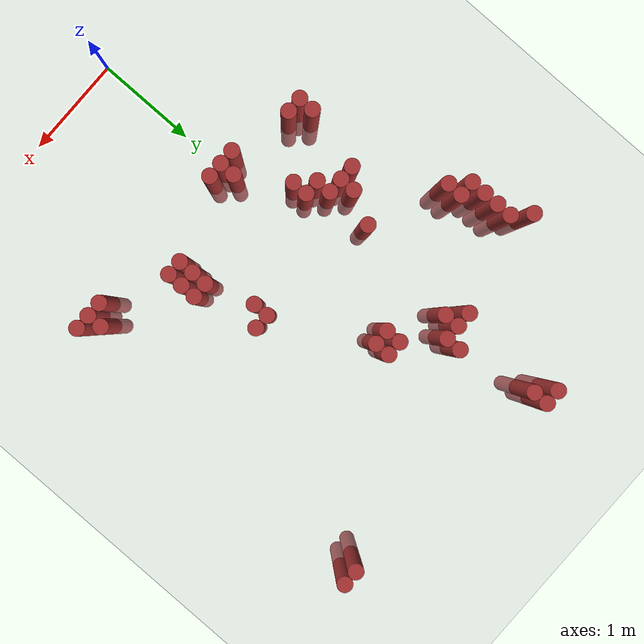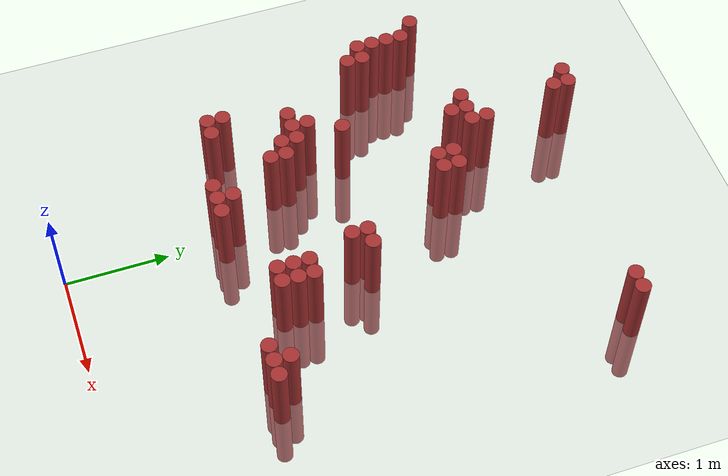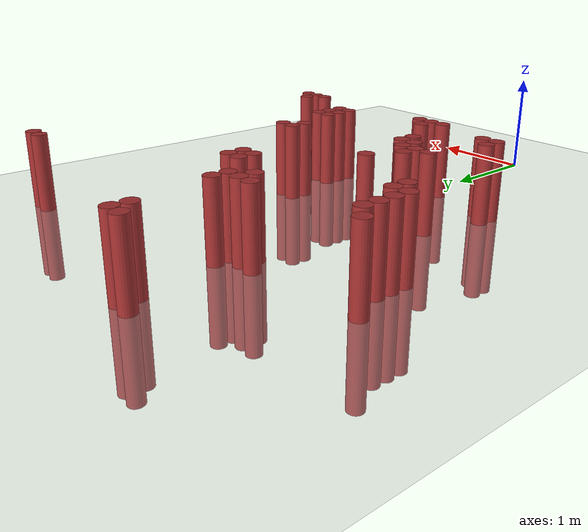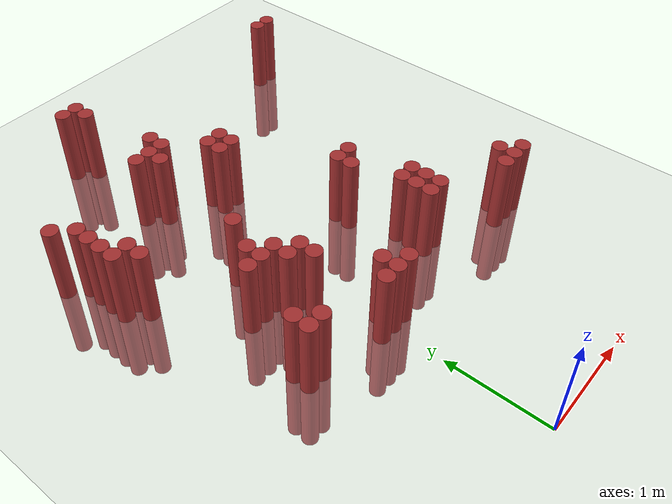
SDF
<sdf version="1.6">
 <world name="default">
  <model name="ground_plane">
   <static>1</static>
   <link name="link">
    <collision name="collision">
     <geometry><plane><normal>0 0 1</normal><size>100 100</size></plane></geometry>
     <surface><friction><ode><mu>100</mu><mu2>50</mu2></ode></friction></surface>
    </collision>
    <visual name="visual">
     <cast_shadows>0</cast_shadows>
     <geometry><plane><normal>0 0 1</normal><size>100 100</size></plane></geometry>
     <material>
      <script><uri>file://media/materials/scripts/gazebo.material</uri><name>Gazebo/Grey</name></script>
     </material>
    </visual>
   </link>
  </model>
  <model name="unit_cylinder_320">
   <static>1</static>
   <pose>-1.475000 3.925000 0.000000 0.000000 0.000000 0.000000</pose>
   <link name="link">
    <inertial>
     <mass>1</mass>
     <inertia><ixx>0.145833</ixx><ixy>0</ixy><ixz>0</ixz><iyy>0.145833</iyy><iyz>0</iyz><izz>0.125</izz></inertia>
    </inertial>
    <collision name="collision">
     <geometry><cylinder><radius>0.075000</radius><length>1.5</length></cylinder></geometry>
    </collision>
    <visual name="visual">
     <geometry><cylinder><radius>0.075000</radius><length>1.5</length></cylinder></geometry>
     <material>
      <ambient>0.648000 0.192000 0.192000 1</ambient>
      <diffuse>0.648000 0.192000 0.192000 1</diffuse>
     </material>
     <material>
      <script><name>Gazebo/Grey</name><uri>file://media/materials/scripts/gazebo.material</uri></script>
     </material>
    </visual>
   </link>
  </model>
  <model name="unit_cylinder_321">
   <static>1</static>
   <pose>-1.325000 3.325000 0.000000 0.000000 0.000000 0.000000</pose>
   <link name="link">
    <inertial>
     <mass>1</mass>
     <inertia><ixx>0.145833</ixx><ixy>0</ixy><ixz>0</ixz><iyy>0.145833</iyy><iyz>0</iyz><izz>0.125</izz></inertia>
    </inertial>
    <collision name="collision">
     <geometry><cylinder><radius>0.075000</radius><length>1.5</length></cylinder></geometry>
    </collision>
    <visual name="visual">
     <geometry><cylinder><radius>0.075000</radius><length>1.5</length></cylinder></geometry>
     <material>
      <ambient>0.648000 0.192000 0.192000 1</ambient>
      <diffuse>0.648000 0.192000 0.192000 1</diffuse>
     </material>
     <material>
      <script><name>Gazebo/Grey</name><uri>file://media/materials/scripts/gazebo.material</uri></script>
     </material>
    </visual>
   </link>
  </model>
  <model name="unit_cylinder_322">
   <static>1</static>
   <pose>-1.325000 3.475000 0.000000 0.000000 0.000000 0.000000</pose>
   <link name="link">
    <inertial>
     <mass>1</mass>
     <inertia><ixx>0.145833</ixx><ixy>0</ixy><ixz>0</ixz><iyy>0.145833</iyy><iyz>0</iyz><izz>0.125</izz></inertia>
    </inertial>
    <collision name="collision">
     <geometry><cylinder><radius>0.075000</radius><length>1.5</length></cylinder></geometry>
    </collision>
    <visual name="visual">
     <geometry><cylinder><radius>0.075000</radius><length>1.5</length></cylinder></geometry>
     <material>
      <ambient>0.648000 0.192000 0.192000 1</ambient>
      <diffuse>0.648000 0.192000 0.192000 1</diffuse>
     </material>
     <material>
      <script><name>Gazebo/Grey</name><uri>file://media/materials/scripts/gazebo.material</uri></script>
     </material>
    </visual>
   </link>
  </model>
  <model name="unit_cylinder_323">
   <static>1</static>
   <pose>-1.325000 3.625000 0.000000 0.000000 0.000000 0.000000</pose>
   <link name="link">
    <inertial>
     <mass>1</mass>
     <inertia><ixx>0.145833</ixx><ixy>0</ixy><ixz>0</ixz><iyy>0.145833</iyy><iyz>0</iyz><izz>0.125</izz></inertia>
    </inertial>
    <collision name="collision">
     <geometry><cylinder><radius>0.075000</radius><length>1.5</length></cylinder></geometry>
    </collision>
    <visual name="visual">
     <geometry><cylinder><radius>0.075000</radius><length>1.5</length></cylinder></geometry>
     <material>
      <ambient>0.648000 0.192000 0.192000 1</ambient>
      <diffuse>0.648000 0.192000 0.192000 1</diffuse>
     </material>
     <material>
      <script><name>Gazebo/Grey</name><uri>file://media/materials/scripts/gazebo.material</uri></script>
     </material>
    </visual>
   </link>
  </model>
  <model name="unit_cylinder_324">
   <static>1</static>
   <pose>-1.325000 3.775000 0.000000 0.000000 0.000000 0.000000</pose>
   <link name="link">
    <inertial>
     <mass>1</mass>
     <inertia><ixx>0.145833</ixx><ixy>0</ixy><ixz>0</ixz><iyy>0.145833</iyy><iyz>0</iyz><izz>0.125</izz></inertia>
    </inertial>
    <collision name="collision">
     <geometry><cylinder><radius>0.075000</radius><length>1.5</length></cylinder></geometry>
    </collision>
    <visual name="visual">
     <geometry><cylinder><radius>0.075000</radius><length>1.5</length></cylinder></geometry>
     <material>
      <ambient>0.648000 0.192000 0.192000 1</ambient>
      <diffuse>0.648000 0.192000 0.192000 1</diffuse>
     </material>
     <material>
      <script><name>Gazebo/Grey</name><uri>file://media/materials/scripts/gazebo.material</uri></script>
     </material>
    </visual>
   </link>
  </model>
  <model name="unit_cylinder_325">
   <static>1</static>
   <pose>-1.175000 3.175000 0.000000 0.000000 0.000000 0.000000</pose>
   <link name="link">
    <inertial>
     <mass>1</mass>
     <inertia><ixx>0.145833</ixx><ixy>0</ixy><ixz>0</ixz><iyy>0.145833</iyy><iyz>0</iyz><izz>0.125</izz></inertia>
    </inertial>
    <collision name="collision">
     <geometry><cylinder><radius>0.075000</radius><length>1.5</length></cylinder></geometry>
    </collision>
    <visual name="visual">
     <geometry><cylinder><radius>0.075000</radius><length>1.5</length></cylinder></geometry>
     <material>
      <ambient>0.648000 0.192000 0.192000 1</ambient>
      <diffuse>0.648000 0.192000 0.192000 1</diffuse>
     </material>
     <material>
      <script><name>Gazebo/Grey</name><uri>file://media/materials/scripts/gazebo.material</uri></script>
     </material>
    </visual>
   </link>
  </model>
  <model name="unit_cylinder_326">
   <static>1</static>
   <pose>-1.175000 3.325000 0.000000 0.000000 0.000000 0.000000</pose>
   <link name="link">
    <inertial>
     <mass>1</mass>
     <inertia><ixx>0.145833</ixx><ixy>0</ixy><ixz>0</ixz><iyy>0.145833</iyy><iyz>0</iyz><izz>0.125</izz></inertia>
    </inertial>
    <collision name="collision">
     <geometry><cylinder><radius>0.075000</radius><length>1.5</length></cylinder></geometry>
    </collision>
    <visual name="visual">
     <geometry><cylinder><radius>0.075000</radius><length>1.5</length></cylinder></geometry>
     <material>
      <ambient>0.648000 0.192000 0.192000 1</ambient>
      <diffuse>0.648000 0.192000 0.192000 1</diffuse>
     </material>
     <material>
      <script><name>Gazebo/Grey</name><uri>file://media/materials/scripts/gazebo.material</uri></script>
     </material>
    </visual>
   </link>
  </model>
  <model name="unit_cylinder_329">
   <static>1</static>
   <pose>-0.875000 1.675000 0.000000 0.000000 0.000000 0.000000</pose>
   <link name="link">
    <inertial>
     <mass>1</mass>
     <inertia><ixx>0.145833</ixx><ixy>0</ixy><ixz>0</ixz><iyy>0.145833</iyy><iyz>0</iyz><izz>0.125</izz></inertia>
    </inertial>
    <collision name="collision">
     <geometry><cylinder><radius>0.075000</radius><length>1.5</length></cylinder></geometry>
    </collision>
    <visual name="visual">
     <geometry><cylinder><radius>0.075000</radius><length>1.5</length></cylinder></geometry>
     <material>
      <ambient>0.648000 0.192000 0.192000 1</ambient>
      <diffuse>0.648000 0.192000 0.192000 1</diffuse>
     </material>
     <material>
      <script><name>Gazebo/Grey</name><uri>file://media/materials/scripts/gazebo.material</uri></script>
     </material>
    </visual>
   </link>
  </model>
  <model name="unit_cylinder_330">
   <static>1</static>
   <pose>-0.875000 1.825000 0.000000 0.000000 0.000000 0.000000</pose>
   <link name="link">
    <inertial>
     <mass>1</mass>
     <inertia><ixx>0.145833</ixx><ixy>0</ixy><ixz>0</ixz><iyy>0.145833</iyy><iyz>0</iyz><izz>0.125</izz></inertia>
    </inertial>
    <collision name="collision">
     <geometry><cylinder><radius>0.075000</radius><length>1.5</length></cylinder></geometry>
    </collision>
    <visual name="visual">
     <geometry><cylinder><radius>0.075000</radius><length>1.5</length></cylinder></geometry>
     <material>
      <ambient>0.648000 0.192000 0.192000 1</ambient>
      <diffuse>0.648000 0.192000 0.192000 1</diffuse>
     </material>
     <material>
      <script><name>Gazebo/Grey</name><uri>file://media/materials/scripts/gazebo.material</uri></script>
     </material>
    </visual>
   </link>
  </model>
  <model name="unit_cylinder_332">
   <static>1</static>
   <pose>-0.725000 1.675000 0.000000 0.000000 0.000000 0.000000</pose>
   <link name="link">
    <inertial>
     <mass>1</mass>
     <inertia><ixx>0.145833</ixx><ixy>0</ixy><ixz>0</ixz><iyy>0.145833</iyy><iyz>0</iyz><izz>0.125</izz></inertia>
    </inertial>
    <collision name="collision">
     <geometry><cylinder><radius>0.075000</radius><length>1.5</length></cylinder></geometry>
    </collision>
    <visual name="visual">
     <geometry><cylinder><radius>0.075000</radius><length>1.5</length></cylinder></geometry>
     <material>
      <ambient>0.648000 0.192000 0.192000 1</ambient>
      <diffuse>0.648000 0.192000 0.192000 1</diffuse>
     </material>
     <material>
      <script><name>Gazebo/Grey</name><uri>file://media/materials/scripts/gazebo.material</uri></script>
     </material>
    </visual>
   </link>
  </model>
  <model name="unit_cylinder_333">
   <static>1</static>
   <pose>-0.725000 2.425000 0.000000 0.000000 0.000000 0.000000</pose>
   <link name="link">
    <inertial>
     <mass>1</mass>
     <inertia><ixx>0.145833</ixx><ixy>0</ixy><ixz>0</ixz><iyy>0.145833</iyy><iyz>0</iyz><izz>0.125</izz></inertia>
    </inertial>
    <collision name="collision">
     <geometry><cylinder><radius>0.075000</radius><length>1.5</length></cylinder></geometry>
    </collision>
    <visual name="visual">
     <geometry><cylinder><radius>0.075000</radius><length>1.5</length></cylinder></geometry>
     <material>
      <ambient>0.648000 0.192000 0.192000 1</ambient>
      <diffuse>0.648000 0.192000 0.192000 1</diffuse>
     </material>
     <material>
      <script><name>Gazebo/Grey</name><uri>file://media/materials/scripts/gazebo.material</uri></script>
     </material>
    </visual>
   </link>
  </model>
  <model name="unit_cylinder_336">
   <static>1</static>
   <pose>-0.575000 2.425000 0.000000 0.000000 0.000000 0.000000</pose>
   <link name="link">
    <inertial>
     <mass>1</mass>
     <inertia><ixx>0.145833</ixx><ixy>0</ixy><ixz>0</ixz><iyy>0.145833</iyy><iyz>0</iyz><izz>0.125</izz></inertia>
    </inertial>
    <collision name="collision">
     <geometry><cylinder><radius>0.075000</radius><length>1.5</length></cylinder></geometry>
    </collision>
    <visual name="visual">
     <geometry><cylinder><radius>0.075000</radius><length>1.5</length></cylinder></geometry>
     <material>
      <ambient>0.648000 0.192000 0.192000 1</ambient>
      <diffuse>0.648000 0.192000 0.192000 1</diffuse>
     </material>
     <material>
      <script><name>Gazebo/Grey</name><uri>file://media/materials/scripts/gazebo.material</uri></script>
     </material>
    </visual>
   </link>
  </model>
  <model name="unit_cylinder_337">
   <static>1</static>
   <pose>-0.575000 2.575000 0.000000 0.000000 0.000000 0.000000</pose>
   <link name="link">
    <inertial>
     <mass>1</mass>
     <inertia><ixx>0.145833</ixx><ixy>0</ixy><ixz>0</ixz><iyy>0.145833</iyy><iyz>0</iyz><izz>0.125</izz></inertia>
    </inertial>
    <collision name="collision">
     <geometry><cylinder><radius>0.075000</radius><length>1.5</length></cylinder></geometry>
    </collision>
    <visual name="visual">
     <geometry><cylinder><radius>0.075000</radius><length>1.5</length></cylinder></geometry>
     <material>
      <ambient>0.648000 0.192000 0.192000 1</ambient>
      <diffuse>0.648000 0.192000 0.192000 1</diffuse>
     </material>
     <material>
      <script><name>Gazebo/Grey</name><uri>file://media/materials/scripts/gazebo.material</uri></script>
     </material>
    </visual>
   </link>
  </model>
  <model name="unit_cylinder_339">
   <static>1</static>
   <pose>-0.425000 2.275000 0.000000 0.000000 0.000000 0.000000</pose>
   <link name="link">
    <inertial>
     <mass>1</mass>
     <inertia><ixx>0.145833</ixx><ixy>0</ixy><ixz>0</ixz><iyy>0.145833</iyy><iyz>0</iyz><izz>0.125</izz></inertia>
    </inertial>
    <collision name="collision">
     <geometry><cylinder><radius>0.075000</radius><length>1.5</length></cylinder></geometry>
    </collision>
    <visual name="visual">
     <geometry><cylinder><radius>0.075000</radius><length>1.5</length></cylinder></geometry>
     <material>
      <ambient>0.648000 0.192000 0.192000 1</ambient>
      <diffuse>0.648000 0.192000 0.192000 1</diffuse>
     </material>
     <material>
      <script><name>Gazebo/Grey</name><uri>file://media/materials/scripts/gazebo.material</uri></script>
     </material>
    </visual>
   </link>
  </model>
  <model name="unit_cylinder_340">
   <static>1</static>
   <pose>-0.425000 2.425000 0.000000 0.000000 0.000000 0.000000</pose>
   <link name="link">
    <inertial>
     <mass>1</mass>
     <inertia><ixx>0.145833</ixx><ixy>0</ixy><ixz>0</ixz><iyy>0.145833</iyy><iyz>0</iyz><izz>0.125</izz></inertia>
    </inertial>
    <collision name="collision">
     <geometry><cylinder><radius>0.075000</radius><length>1.5</length></cylinder></geometry>
    </collision>
    <visual name="visual">
     <geometry><cylinder><radius>0.075000</radius><length>1.5</length></cylinder></geometry>
     <material>
      <ambient>0.648000 0.192000 0.192000 1</ambient>
      <diffuse>0.648000 0.192000 0.192000 1</diffuse>
     </material>
     <material>
      <script><name>Gazebo/Grey</name><uri>file://media/materials/scripts/gazebo.material</uri></script>
     </material>
    </visual>
   </link>
  </model>
  <model name="unit_cylinder_341">
   <static>1</static>
   <pose>-0.425000 2.875000 0.000000 0.000000 0.000000 0.000000</pose>
   <link name="link">
    <inertial>
     <mass>1</mass>
     <inertia><ixx>0.145833</ixx><ixy>0</ixy><ixz>0</ixz><iyy>0.145833</iyy><iyz>0</iyz><izz>0.125</izz></inertia>
    </inertial>
    <collision name="collision">
     <geometry><cylinder><radius>0.075000</radius><length>1.5</length></cylinder></geometry>
    </collision>
    <visual name="visual">
     <geometry><cylinder><radius>0.075000</radius><length>1.5</length></cylinder></geometry>
     <material>
      <ambient>0.648000 0.192000 0.192000 1</ambient>
      <diffuse>0.648000 0.192000 0.192000 1</diffuse>
     </material>
     <material>
      <script><name>Gazebo/Grey</name><uri>file://media/materials/scripts/gazebo.material</uri></script>
     </material>
    </visual>
   </link>
  </model>
  <model name="unit_cylinder_342">
   <static>1</static>
   <pose>-0.425000 4.075000 0.000000 0.000000 0.000000 0.000000</pose>
   <link name="link">
    <inertial>
     <mass>1</mass>
     <inertia><ixx>0.145833</ixx><ixy>0</ixy><ixz>0</ixz><iyy>0.145833</iyy><iyz>0</iyz><izz>0.125</izz></inertia>
    </inertial>
    <collision name="collision">
     <geometry><cylinder><radius>0.075000</radius><length>1.5</length></cylinder></geometry>
    </collision>
    <visual name="visual">
     <geometry><cylinder><radius>0.075000</radius><length>1.5</length></cylinder></geometry>
     <material>
      <ambient>0.648000 0.192000 0.192000 1</ambient>
      <diffuse>0.648000 0.192000 0.192000 1</diffuse>
     </material>
     <material>
      <script><name>Gazebo/Grey</name><uri>file://media/materials/scripts/gazebo.material</uri></script>
     </material>
    </visual>
   </link>
  </model>
  <model name="unit_cylinder_343">
   <static>1</static>
   <pose>-0.425000 5.125000 0.000000 0.000000 0.000000 0.000000</pose>
   <link name="link">
    <inertial>
     <mass>1</mass>
     <inertia><ixx>0.145833</ixx><ixy>0</ixy><ixz>0</ixz><iyy>0.145833</iyy><iyz>0</iyz><izz>0.125</izz></inertia>
    </inertial>
    <collision name="collision">
     <geometry><cylinder><radius>0.075000</radius><length>1.5</length></cylinder></geometry>
    </collision>
    <visual name="visual">
     <geometry><cylinder><radius>0.075000</radius><length>1.5</length></cylinder></geometry>
     <material>
      <ambient>0.648000 0.192000 0.192000 1</ambient>
      <diffuse>0.648000 0.192000 0.192000 1</diffuse>
     </material>
     <material>
      <script><name>Gazebo/Grey</name><uri>file://media/materials/scripts/gazebo.material</uri></script>
     </material>
    </visual>
   </link>
  </model>
  <model name="unit_cylinder_344">
   <static>1</static>
   <pose>-0.275000 2.125000 0.000000 0.000000 0.000000 0.000000</pose>
   <link name="link">
    <inertial>
     <mass>1</mass>
     <inertia><ixx>0.145833</ixx><ixy>0</ixy><ixz>0</ixz><iyy>0.145833</iyy><iyz>0</iyz><izz>0.125</izz></inertia>
    </inertial>
    <collision name="collision">
     <geometry><cylinder><radius>0.075000</radius><length>1.5</length></cylinder></geometry>
    </collision>
    <visual name="visual">
     <geometry><cylinder><radius>0.075000</radius><length>1.5</length></cylinder></geometry>
     <material>
      <ambient>0.648000 0.192000 0.192000 1</ambient>
      <diffuse>0.648000 0.192000 0.192000 1</diffuse>
     </material>
     <material>
      <script><name>Gazebo/Grey</name><uri>file://media/materials/scripts/gazebo.material</uri></script>
     </material>
    </visual>
   </link>
  </model>
  <model name="unit_cylinder_345">
   <static>1</static>
   <pose>-0.275000 2.275000 0.000000 0.000000 0.000000 0.000000</pose>
   <link name="link">
    <inertial>
     <mass>1</mass>
     <inertia><ixx>0.145833</ixx><ixy>0</ixy><ixz>0</ixz><iyy>0.145833</iyy><iyz>0</iyz><izz>0.125</izz></inertia>
    </inertial>
    <collision name="collision">
     <geometry><cylinder><radius>0.075000</radius><length>1.5</length></cylinder></geometry>
    </collision>
    <visual name="visual">
     <geometry><cylinder><radius>0.075000</radius><length>1.5</length></cylinder></geometry>
     <material>
      <ambient>0.648000 0.192000 0.192000 1</ambient>
      <diffuse>0.648000 0.192000 0.192000 1</diffuse>
     </material>
     <material>
      <script><name>Gazebo/Grey</name><uri>file://media/materials/scripts/gazebo.material</uri></script>
     </material>
    </visual>
   </link>
  </model>
  <model name="unit_cylinder_346">
   <static>1</static>
   <pose>-0.275000 3.925000 0.000000 0.000000 0.000000 0.000000</pose>
   <link name="link">
    <inertial>
     <mass>1</mass>
     <inertia><ixx>0.145833</ixx><ixy>0</ixy><ixz>0</ixz><iyy>0.145833</iyy><iyz>0</iyz><izz>0.125</izz></inertia>
    </inertial>
    <collision name="collision">
     <geometry><cylinder><radius>0.075000</radius><length>1.5</length></cylinder></geometry>
    </collision>
    <visual name="visual">
     <geometry><cylinder><radius>0.075000</radius><length>1.5</length></cylinder></geometry>
     <material>
      <ambient>0.648000 0.192000 0.192000 1</ambient>
      <diffuse>0.648000 0.192000 0.192000 1</diffuse>
     </material>
     <material>
      <script><name>Gazebo/Grey</name><uri>file://media/materials/scripts/gazebo.material</uri></script>
     </material>
    </visual>
   </link>
  </model>
  <model name="unit_cylinder_347">
   <static>1</static>
   <pose>-0.275000 4.075000 0.000000 0.000000 0.000000 0.000000</pose>
   <link name="link">
    <inertial>
     <mass>1</mass>
     <inertia><ixx>0.145833</ixx><ixy>0</ixy><ixz>0</ixz><iyy>0.145833</iyy><iyz>0</iyz><izz>0.125</izz></inertia>
    </inertial>
    <collision name="collision">
     <geometry><cylinder><radius>0.075000</radius><length>1.5</length></cylinder></geometry>
    </collision>
    <visual name="visual">
     <geometry><cylinder><radius>0.075000</radius><length>1.5</length></cylinder></geometry>
     <material>
      <ambient>0.648000 0.192000 0.192000 1</ambient>
      <diffuse>0.648000 0.192000 0.192000 1</diffuse>
     </material>
     <material>
      <script><name>Gazebo/Grey</name><uri>file://media/materials/scripts/gazebo.material</uri></script>
     </material>
    </visual>
   </link>
  </model>
  <model name="unit_cylinder_348">
   <static>1</static>
   <pose>-0.275000 4.975000 0.000000 0.000000 0.000000 0.000000</pose>
   <link name="link">
    <inertial>
     <mass>1</mass>
     <inertia><ixx>0.145833</ixx><ixy>0</ixy><ixz>0</ixz><iyy>0.145833</iyy><iyz>0</iyz><izz>0.125</izz></inertia>
    </inertial>
    <collision name="collision">
     <geometry><cylinder><radius>0.075000</radius><length>1.5</length></cylinder></geometry>
    </collision>
    <visual name="visual">
     <geometry><cylinder><radius>0.075000</radius><length>1.5</length></cylinder></geometry>
     <material>
      <ambient>0.648000 0.192000 0.192000 1</ambient>
      <diffuse>0.648000 0.192000 0.192000 1</diffuse>
     </material>
     <material>
      <script><name>Gazebo/Grey</name><uri>file://media/materials/scripts/gazebo.material</uri></script>
     </material>
    </visual>
   </link>
  </model>
  <model name="unit_cylinder_349">
   <static>1</static>
   <pose>-0.275000 5.125000 0.000000 0.000000 0.000000 0.000000</pose>
   <link name="link">
    <inertial>
     <mass>1</mass>
     <inertia><ixx>0.145833</ixx><ixy>0</ixy><ixz>0</ixz><iyy>0.145833</iyy><iyz>0</iyz><izz>0.125</izz></inertia>
    </inertial>
    <collision name="collision">
     <geometry><cylinder><radius>0.075000</radius><length>1.5</length></cylinder></geometry>
    </collision>
    <visual name="visual">
     <geometry><cylinder><radius>0.075000</radius><length>1.5</length></cylinder></geometry>
     <material>
      <ambient>0.648000 0.192000 0.192000 1</ambient>
      <diffuse>0.648000 0.192000 0.192000 1</diffuse>
     </material>
     <material>
      <script><name>Gazebo/Grey</name><uri>file://media/materials/scripts/gazebo.material</uri></script>
     </material>
    </visual>
   </link>
  </model>
  <model name="unit_cylinder_350">
   <static>1</static>
   <pose>-0.125000 1.525000 0.000000 0.000000 0.000000 0.000000</pose>
   <link name="link">
    <inertial>
     <mass>1</mass>
     <inertia><ixx>0.145833</ixx><ixy>0</ixy><ixz>0</ixz><iyy>0.145833</iyy><iyz>0</iyz><izz>0.125</izz></inertia>
    </inertial>
    <collision name="collision">
     <geometry><cylinder><radius>0.075000</radius><length>1.5</length></cylinder></geometry>
    </collision>
    <visual name="visual">
     <geometry><cylinder><radius>0.075000</radius><length>1.5</length></cylinder></geometry>
     <material>
      <ambient>0.648000 0.192000 0.192000 1</ambient>
      <diffuse>0.648000 0.192000 0.192000 1</diffuse>
     </material>
     <material>
      <script><name>Gazebo/Grey</name><uri>file://media/materials/scripts/gazebo.material</uri></script>
     </material>
    </visual>
   </link>
  </model>
  <model name="unit_cylinder_351">
   <static>1</static>
   <pose>-0.125000 4.075000 0.000000 0.000000 0.000000 0.000000</pose>
   <link name="link">
    <inertial>
     <mass>1</mass>
     <inertia><ixx>0.145833</ixx><ixy>0</ixy><ixz>0</ixz><iyy>0.145833</iyy><iyz>0</iyz><izz>0.125</izz></inertia>
    </inertial>
    <collision name="collision">
     <geometry><cylinder><radius>0.075000</radius><length>1.5</length></cylinder></geometry>
    </collision>
    <visual name="visual">
     <geometry><cylinder><radius>0.075000</radius><length>1.5</length></cylinder></geometry>
     <material>
      <ambient>0.648000 0.192000 0.192000 1</ambient>
      <diffuse>0.648000 0.192000 0.192000 1</diffuse>
     </material>
     <material>
      <script><name>Gazebo/Grey</name><uri>file://media/materials/scripts/gazebo.material</uri></script>
     </material>
    </visual>
   </link>
  </model>
  <model name="unit_cylinder_352">
   <static>1</static>
   <pose>-0.125000 4.225000 0.000000 0.000000 0.000000 0.000000</pose>
   <link name="link">
    <inertial>
     <mass>1</mass>
     <inertia><ixx>0.145833</ixx><ixy>0</ixy><ixz>0</ixz><iyy>0.145833</iyy><iyz>0</iyz><izz>0.125</izz></inertia>
    </inertial>
    <collision name="collision">
     <geometry><cylinder><radius>0.075000</radius><length>1.5</length></cylinder></geometry>
    </collision>
    <visual name="visual">
     <geometry><cylinder><radius>0.075000</radius><length>1.5</length></cylinder></geometry>
     <material>
      <ambient>0.648000 0.192000 0.192000 1</ambient>
      <diffuse>0.648000 0.192000 0.192000 1</diffuse>
     </material>
     <material>
      <script><name>Gazebo/Grey</name><uri>file://media/materials/scripts/gazebo.material</uri></script>
     </material>
    </visual>
   </link>
  </model>
  <model name="unit_cylinder_353">
   <static>1</static>
   <pose>0.025000 1.525000 0.000000 0.000000 0.000000 0.000000</pose>
   <link name="link">
    <inertial>
     <mass>1</mass>
     <inertia><ixx>0.145833</ixx><ixy>0</ixy><ixz>0</ixz><iyy>0.145833</iyy><iyz>0</iyz><izz>0.125</izz></inertia>
    </inertial>
    <collision name="collision">
     <geometry><cylinder><radius>0.075000</radius><length>1.5</length></cylinder></geometry>
    </collision>
    <visual name="visual">
     <geometry><cylinder><radius>0.075000</radius><length>1.5</length></cylinder></geometry>
     <material>
      <ambient>0.648000 0.192000 0.192000 1</ambient>
      <diffuse>0.648000 0.192000 0.192000 1</diffuse>
     </material>
     <material>
      <script><name>Gazebo/Grey</name><uri>file://media/materials/scripts/gazebo.material</uri></script>
     </material>
    </visual>
   </link>
  </model>
  <model name="unit_cylinder_354">
   <static>1</static>
   <pose>0.025000 1.675000 0.000000 0.000000 0.000000 0.000000</pose>
   <link name="link">
    <inertial>
     <mass>1</mass>
     <inertia><ixx>0.145833</ixx><ixy>0</ixy><ixz>0</ixz><iyy>0.145833</iyy><iyz>0</iyz><izz>0.125</izz></inertia>
    </inertial>
    <collision name="collision">
     <geometry><cylinder><radius>0.075000</radius><length>1.5</length></cylinder></geometry>
    </collision>
    <visual name="visual">
     <geometry><cylinder><radius>0.075000</radius><length>1.5</length></cylinder></geometry>
     <material>
      <ambient>0.648000 0.192000 0.192000 1</ambient>
      <diffuse>0.648000 0.192000 0.192000 1</diffuse>
     </material>
     <material>
      <script><name>Gazebo/Grey</name><uri>file://media/materials/scripts/gazebo.material</uri></script>
     </material>
    </visual>
   </link>
  </model>
  <model name="unit_cylinder_355">
   <static>1</static>
   <pose>0.175000 1.525000 0.000000 0.000000 0.000000 0.000000</pose>
   <link name="link">
    <inertial>
     <mass>1</mass>
     <inertia><ixx>0.145833</ixx><ixy>0</ixy><ixz>0</ixz><iyy>0.145833</iyy><iyz>0</iyz><izz>0.125</izz></inertia>
    </inertial>
    <collision name="collision">
     <geometry><cylinder><radius>0.075000</radius><length>1.5</length></cylinder></geometry>
    </collision>
    <visual name="visual">
     <geometry><cylinder><radius>0.075000</radius><length>1.5</length></cylinder></geometry>
     <material>
      <ambient>0.648000 0.192000 0.192000 1</ambient>
      <diffuse>0.648000 0.192000 0.192000 1</diffuse>
     </material>
     <material>
      <script><name>Gazebo/Grey</name><uri>file://media/materials/scripts/gazebo.material</uri></script>
     </material>
    </visual>
   </link>
  </model>
  <model name="unit_cylinder_356">
   <static>1</static>
   <pose>0.175000 3.625000 0.000000 0.000000 0.000000 0.000000</pose>
   <link name="link">
    <inertial>
     <mass>1</mass>
     <inertia><ixx>0.145833</ixx><ixy>0</ixy><ixz>0</ixz><iyy>0.145833</iyy><iyz>0</iyz><izz>0.125</izz></inertia>
    </inertial>
    <collision name="collision">
     <geometry><cylinder><radius>0.075000</radius><length>1.5</length></cylinder></geometry>
    </collision>
    <visual name="visual">
     <geometry><cylinder><radius>0.075000</radius><length>1.5</length></cylinder></geometry>
     <material>
      <ambient>0.648000 0.192000 0.192000 1</ambient>
      <diffuse>0.648000 0.192000 0.192000 1</diffuse>
     </material>
     <material>
      <script><name>Gazebo/Grey</name><uri>file://media/materials/scripts/gazebo.material</uri></script>
     </material>
    </visual>
   </link>
  </model>
  <model name="unit_cylinder_357">
   <static>1</static>
   <pose>0.175000 3.775000 0.000000 0.000000 0.000000 0.000000</pose>
   <link name="link">
    <inertial>
     <mass>1</mass>
     <inertia><ixx>0.145833</ixx><ixy>0</ixy><ixz>0</ixz><iyy>0.145833</iyy><iyz>0</iyz><izz>0.125</izz></inertia>
    </inertial>
    <collision name="collision">
     <geometry><cylinder><radius>0.075000</radius><length>1.5</length></cylinder></geometry>
    </collision>
    <visual name="visual">
     <geometry><cylinder><radius>0.075000</radius><length>1.5</length></cylinder></geometry>
     <material>
      <ambient>0.648000 0.192000 0.192000 1</ambient>
      <diffuse>0.648000 0.192000 0.192000 1</diffuse>
     </material>
     <material>
      <script><name>Gazebo/Grey</name><uri>file://media/materials/scripts/gazebo.material</uri></script>
     </material>
    </visual>
   </link>
  </model>
  <model name="unit_cylinder_358">
   <static>1</static>
   <pose>0.325000 3.625000 0.000000 0.000000 0.000000 0.000000</pose>
   <link name="link">
    <inertial>
     <mass>1</mass>
     <inertia><ixx>0.145833</ixx><ixy>0</ixy><ixz>0</ixz><iyy>0.145833</iyy><iyz>0</iyz><izz>0.125</izz></inertia>
    </inertial>
    <collision name="collision">
     <geometry><cylinder><radius>0.075000</radius><length>1.5</length></cylinder></geometry>
    </collision>
    <visual name="visual">
     <geometry><cylinder><radius>0.075000</radius><length>1.5</length></cylinder></geometry>
     <material>
      <ambient>0.648000 0.192000 0.192000 1</ambient>
      <diffuse>0.648000 0.192000 0.192000 1</diffuse>
     </material>
     <material>
      <script><name>Gazebo/Grey</name><uri>file://media/materials/scripts/gazebo.material</uri></script>
     </material>
    </visual>
   </link>
  </model>
  <model name="unit_cylinder_359">
   <static>1</static>
   <pose>0.325000 3.775000 0.000000 0.000000 0.000000 0.000000</pose>
   <link name="link">
    <inertial>
     <mass>1</mass>
     <inertia><ixx>0.145833</ixx><ixy>0</ixy><ixz>0</ixz><iyy>0.145833</iyy><iyz>0</iyz><izz>0.125</izz></inertia>
    </inertial>
    <collision name="collision">
     <geometry><cylinder><radius>0.075000</radius><length>1.5</length></cylinder></geometry>
    </collision>
    <visual name="visual">
     <geometry><cylinder><radius>0.075000</radius><length>1.5</length></cylinder></geometry>
     <material>
      <ambient>0.648000 0.192000 0.192000 1</ambient>
      <diffuse>0.648000 0.192000 0.192000 1</diffuse>
     </material>
     <material>
      <script><name>Gazebo/Grey</name><uri>file://media/materials/scripts/gazebo.material</uri></script>
     </material>
    </visual>
   </link>
  </model>
  <model name="unit_cylinder_360">
   <static>1</static>
   <pose>0.775000 2.575000 0.000000 0.000000 0.000000 0.000000</pose>
   <link name="link">
    <inertial>
     <mass>1</mass>
     <inertia><ixx>0.145833</ixx><ixy>0</ixy><ixz>0</ixz><iyy>0.145833</iyy><iyz>0</iyz><izz>0.125</izz></inertia>
    </inertial>
    <collision name="collision">
     <geometry><cylinder><radius>0.075000</radius><length>1.5</length></cylinder></geometry>
    </collision>
    <visual name="visual">
     <geometry><cylinder><radius>0.075000</radius><length>1.5</length></cylinder></geometry>
     <material>
      <ambient>0.648000 0.192000 0.192000 1</ambient>
      <diffuse>0.648000 0.192000 0.192000 1</diffuse>
     </material>
     <material>
      <script><name>Gazebo/Grey</name><uri>file://media/materials/scripts/gazebo.material</uri></script>
     </material>
    </visual>
   </link>
  </model>
  <model name="unit_cylinder_361">
   <static>1</static>
   <pose>0.775000 2.725000 0.000000 0.000000 0.000000 0.000000</pose>
   <link name="link">
    <inertial>
     <mass>1</mass>
     <inertia><ixx>0.145833</ixx><ixy>0</ixy><ixz>0</ixz><iyy>0.145833</iyy><iyz>0</iyz><izz>0.125</izz></inertia>
    </inertial>
    <collision name="collision">
     <geometry><cylinder><radius>0.075000</radius><length>1.5</length></cylinder></geometry>
    </collision>
    <visual name="visual">
     <geometry><cylinder><radius>0.075000</radius><length>1.5</length></cylinder></geometry>
     <material>
      <ambient>0.648000 0.192000 0.192000 1</ambient>
      <diffuse>0.648000 0.192000 0.192000 1</diffuse>
     </material>
     <material>
      <script><name>Gazebo/Grey</name><uri>file://media/materials/scripts/gazebo.material</uri></script>
     </material>
    </visual>
   </link>
  </model>
  <model name="unit_cylinder_362">
   <static>1</static>
   <pose>0.925000 1.825000 0.000000 0.000000 0.000000 0.000000</pose>
   <link name="link">
    <inertial>
     <mass>1</mass>
     <inertia><ixx>0.145833</ixx><ixy>0</ixy><ixz>0</ixz><iyy>0.145833</iyy><iyz>0</iyz><izz>0.125</izz></inertia>
    </inertial>
    <collision name="collision">
     <geometry><cylinder><radius>0.075000</radius><length>1.5</length></cylinder></geometry>
    </collision>
    <visual name="visual">
     <geometry><cylinder><radius>0.075000</radius><length>1.5</length></cylinder></geometry>
     <material>
      <ambient>0.648000 0.192000 0.192000 1</ambient>
      <diffuse>0.648000 0.192000 0.192000 1</diffuse>
     </material>
     <material>
      <script><name>Gazebo/Grey</name><uri>file://media/materials/scripts/gazebo.material</uri></script>
     </material>
    </visual>
   </link>
  </model>
  <model name="unit_cylinder_363">
   <static>1</static>
   <pose>0.925000 1.975000 0.000000 0.000000 0.000000 0.000000</pose>
   <link name="link">
    <inertial>
     <mass>1</mass>
     <inertia><ixx>0.145833</ixx><ixy>0</ixy><ixz>0</ixz><iyy>0.145833</iyy><iyz>0</iyz><izz>0.125</izz></inertia>
    </inertial>
    <collision name="collision">
     <geometry><cylinder><radius>0.075000</radius><length>1.5</length></cylinder></geometry>
    </collision>
    <visual name="visual">
     <geometry><cylinder><radius>0.075000</radius><length>1.5</length></cylinder></geometry>
     <material>
      <ambient>0.648000 0.192000 0.192000 1</ambient>
      <diffuse>0.648000 0.192000 0.192000 1</diffuse>
     </material>
     <material>
      <script><name>Gazebo/Grey</name><uri>file://media/materials/scripts/gazebo.material</uri></script>
     </material>
    </visual>
   </link>
  </model>
  <model name="unit_cylinder_364">
   <static>1</static>
   <pose>0.925000 2.125000 0.000000 0.000000 0.000000 0.000000</pose>
   <link name="link">
    <inertial>
     <mass>1</mass>
     <inertia><ixx>0.145833</ixx><ixy>0</ixy><ixz>0</ixz><iyy>0.145833</iyy><iyz>0</iyz><izz>0.125</izz></inertia>
    </inertial>
    <collision name="collision">
     <geometry><cylinder><radius>0.075000</radius><length>1.5</length></cylinder></geometry>
    </collision>
    <visual name="visual">
     <geometry><cylinder><radius>0.075000</radius><length>1.5</length></cylinder></geometry>
     <material>
      <ambient>0.648000 0.192000 0.192000 1</ambient>
      <diffuse>0.648000 0.192000 0.192000 1</diffuse>
     </material>
     <material>
      <script><name>Gazebo/Grey</name><uri>file://media/materials/scripts/gazebo.material</uri></script>
     </material>
    </visual>
   </link>
  </model>
  <model name="unit_cylinder_365">
   <static>1</static>
   <pose>0.925000 2.725000 0.000000 0.000000 0.000000 0.000000</pose>
   <link name="link">
    <inertial>
     <mass>1</mass>
     <inertia><ixx>0.145833</ixx><ixy>0</ixy><ixz>0</ixz><iyy>0.145833</iyy><iyz>0</iyz><izz>0.125</izz></inertia>
    </inertial>
    <collision name="collision">
     <geometry><cylinder><radius>0.075000</radius><length>1.5</length></cylinder></geometry>
    </collision>
    <visual name="visual">
     <geometry><cylinder><radius>0.075000</radius><length>1.5</length></cylinder></geometry>
     <material>
      <ambient>0.648000 0.192000 0.192000 1</ambient>
      <diffuse>0.648000 0.192000 0.192000 1</diffuse>
     </material>
     <material>
      <script><name>Gazebo/Grey</name><uri>file://media/materials/scripts/gazebo.material</uri></script>
     </material>
    </visual>
   </link>
  </model>
  <model name="unit_cylinder_366">
   <static>1</static>
   <pose>1.075000 1.825000 0.000000 0.000000 0.000000 0.000000</pose>
   <link name="link">
    <inertial>
     <mass>1</mass>
     <inertia><ixx>0.145833</ixx><ixy>0</ixy><ixz>0</ixz><iyy>0.145833</iyy><iyz>0</iyz><izz>0.125</izz></inertia>
    </inertial>
    <collision name="collision">
     <geometry><cylinder><radius>0.075000</radius><length>1.5</length></cylinder></geometry>
    </collision>
    <visual name="visual">
     <geometry><cylinder><radius>0.075000</radius><length>1.5</length></cylinder></geometry>
     <material>
      <ambient>0.648000 0.192000 0.192000 1</ambient>
      <diffuse>0.648000 0.192000 0.192000 1</diffuse>
     </material>
     <material>
      <script><name>Gazebo/Grey</name><uri>file://media/materials/scripts/gazebo.material</uri></script>
     </material>
    </visual>
   </link>
  </model>
  <model name="unit_cylinder_367">
   <static>1</static>
   <pose>1.075000 1.975000 0.000000 0.000000 0.000000 0.000000</pose>
   <link name="link">
    <inertial>
     <mass>1</mass>
     <inertia><ixx>0.145833</ixx><ixy>0</ixy><ixz>0</ixz><iyy>0.145833</iyy><iyz>0</iyz><izz>0.125</izz></inertia>
    </inertial>
    <collision name="collision">
     <geometry><cylinder><radius>0.075000</radius><length>1.5</length></cylinder></geometry>
    </collision>
    <visual name="visual">
     <geometry><cylinder><radius>0.075000</radius><length>1.5</length></cylinder></geometry>
     <material>
      <ambient>0.648000 0.192000 0.192000 1</ambient>
      <diffuse>0.648000 0.192000 0.192000 1</diffuse>
     </material>
     <material>
      <script><name>Gazebo/Grey</name><uri>file://media/materials/scripts/gazebo.material</uri></script>
     </material>
    </visual>
   </link>
  </model>
  <model name="unit_cylinder_368">
   <static>1</static>
   <pose>1.075000 2.125000 0.000000 0.000000 0.000000 0.000000</pose>
   <link name="link">
    <inertial>
     <mass>1</mass>
     <inertia><ixx>0.145833</ixx><ixy>0</ixy><ixz>0</ixz><iyy>0.145833</iyy><iyz>0</iyz><izz>0.125</izz></inertia>
    </inertial>
    <collision name="collision">
     <geometry><cylinder><radius>0.075000</radius><length>1.5</length></cylinder></geometry>
    </collision>
    <visual name="visual">
     <geometry><cylinder><radius>0.075000</radius><length>1.5</length></cylinder></geometry>
     <material>
      <ambient>0.648000 0.192000 0.192000 1</ambient>
      <diffuse>0.648000 0.192000 0.192000 1</diffuse>
     </material>
     <material>
      <script><name>Gazebo/Grey</name><uri>file://media/materials/scripts/gazebo.material</uri></script>
     </material>
    </visual>
   </link>
  </model>
  <model name="unit_cylinder_381">
   <static>1</static>
   <pose>1.675000 1.525000 0.000000 0.000000 0.000000 0.000000</pose>
   <link name="link">
    <inertial>
     <mass>1</mass>
     <inertia><ixx>0.145833</ixx><ixy>0</ixy><ixz>0</ixz><iyy>0.145833</iyy><iyz>0</iyz><izz>0.125</izz></inertia>
    </inertial>
    <collision name="collision">
     <geometry><cylinder><radius>0.075000</radius><length>1.5</length></cylinder></geometry>
    </collision>
    <visual name="visual">
     <geometry><cylinder><radius>0.075000</radius><length>1.5</length></cylinder></geometry>
     <material>
      <ambient>0.648000 0.192000 0.192000 1</ambient>
      <diffuse>0.648000 0.192000 0.192000 1</diffuse>
     </material>
     <material>
      <script><name>Gazebo/Grey</name><uri>file://media/materials/scripts/gazebo.material</uri></script>
     </material>
    </visual>
   </link>
  </model>
  <model name="unit_cylinder_385">
   <static>1</static>
   <pose>1.825000 1.525000 0.000000 0.000000 0.000000 0.000000</pose>
   <link name="link">
    <inertial>
     <mass>1</mass>
     <inertia><ixx>0.145833</ixx><ixy>0</ixy><ixz>0</ixz><iyy>0.145833</iyy><iyz>0</iyz><izz>0.125</izz></inertia>
    </inertial>
    <collision name="collision">
     <geometry><cylinder><radius>0.075000</radius><length>1.5</length></cylinder></geometry>
    </collision>
    <visual name="visual">
     <geometry><cylinder><radius>0.075000</radius><length>1.5</length></cylinder></geometry>
     <material>
      <ambient>0.648000 0.192000 0.192000 1</ambient>
      <diffuse>0.648000 0.192000 0.192000 1</diffuse>
     </material>
     <material>
      <script><name>Gazebo/Grey</name><uri>file://media/materials/scripts/gazebo.material</uri></script>
     </material>
    </visual>
   </link>
  </model>
  <model name="unit_cylinder_386">
   <static>1</static>
   <pose>1.825000 1.675000 0.000000 0.000000 0.000000 0.000000</pose>
   <link name="link">
    <inertial>
     <mass>1</mass>
     <inertia><ixx>0.145833</ixx><ixy>0</ixy><ixz>0</ixz><iyy>0.145833</iyy><iyz>0</iyz><izz>0.125</izz></inertia>
    </inertial>
    <collision name="collision">
     <geometry><cylinder><radius>0.075000</radius><length>1.5</length></cylinder></geometry>
    </collision>
    <visual name="visual">
     <geometry><cylinder><radius>0.075000</radius><length>1.5</length></cylinder></geometry>
     <material>
      <ambient>0.648000 0.192000 0.192000 1</ambient>
      <diffuse>0.648000 0.192000 0.192000 1</diffuse>
     </material>
     <material>
      <script><name>Gazebo/Grey</name><uri>file://media/materials/scripts/gazebo.material</uri></script>
     </material>
    </visual>
   </link>
  </model>
  <model name="unit_cylinder_388">
   <static>1</static>
   <pose>1.975000 1.525000 0.000000 0.000000 0.000000 0.000000</pose>
   <link name="link">
    <inertial>
     <mass>1</mass>
     <inertia><ixx>0.145833</ixx><ixy>0</ixy><ixz>0</ixz><iyy>0.145833</iyy><iyz>0</iyz><izz>0.125</izz></inertia>
    </inertial>
    <collision name="collision">
     <geometry><cylinder><radius>0.075000</radius><length>1.5</length></cylinder></geometry>
    </collision>
    <visual name="visual">
     <geometry><cylinder><radius>0.075000</radius><length>1.5</length></cylinder></geometry>
     <material>
      <ambient>0.648000 0.192000 0.192000 1</ambient>
      <diffuse>0.648000 0.192000 0.192000 1</diffuse>
     </material>
     <material>
      <script><name>Gazebo/Grey</name><uri>file://media/materials/scripts/gazebo.material</uri></script>
     </material>
    </visual>
   </link>
  </model>
  <model name="unit_cylinder_389">
   <static>1</static>
   <pose>1.975000 4.825000 0.000000 0.000000 0.000000 0.000000</pose>
   <link name="link">
    <inertial>
     <mass>1</mass>
     <inertia><ixx>0.145833</ixx><ixy>0</ixy><ixz>0</ixz><iyy>0.145833</iyy><iyz>0</iyz><izz>0.125</izz></inertia>
    </inertial>
    <collision name="collision">
     <geometry><cylinder><radius>0.075000</radius><length>1.5</length></cylinder></geometry>
    </collision>
    <visual name="visual">
     <geometry><cylinder><radius>0.075000</radius><length>1.5</length></cylinder></geometry>
     <material>
      <ambient>0.648000 0.192000 0.192000 1</ambient>
      <diffuse>0.648000 0.192000 0.192000 1</diffuse>
     </material>
     <material>
      <script><name>Gazebo/Grey</name><uri>file://media/materials/scripts/gazebo.material</uri></script>
     </material>
    </visual>
   </link>
  </model>
  <model name="unit_cylinder_390">
   <static>1</static>
   <pose>2.125000 4.825000 0.000000 0.000000 0.000000 0.000000</pose>
   <link name="link">
    <inertial>
     <mass>1</mass>
     <inertia><ixx>0.145833</ixx><ixy>0</ixy><ixz>0</ixz><iyy>0.145833</iyy><iyz>0</iyz><izz>0.125</izz></inertia>
    </inertial>
    <collision name="collision">
     <geometry><cylinder><radius>0.075000</radius><length>1.5</length></cylinder></geometry>
    </collision>
    <visual name="visual">
     <geometry><cylinder><radius>0.075000</radius><length>1.5</length></cylinder></geometry>
     <material>
      <ambient>0.648000 0.192000 0.192000 1</ambient>
      <diffuse>0.648000 0.192000 0.192000 1</diffuse>
     </material>
     <material>
      <script><name>Gazebo/Grey</name><uri>file://media/materials/scripts/gazebo.material</uri></script>
     </material>
    </visual>
   </link>
  </model>
 </world>
</sdf>
